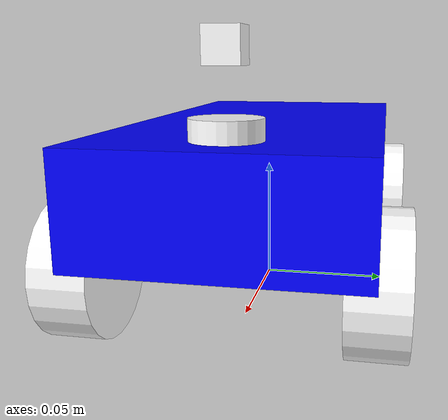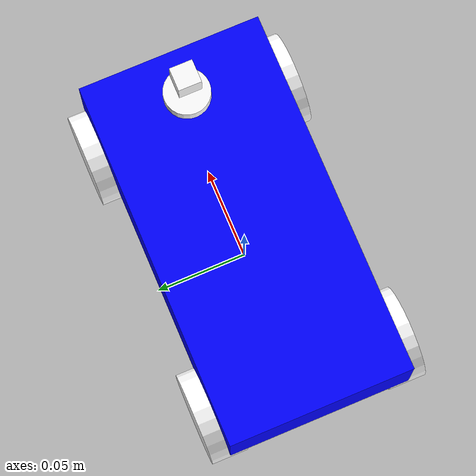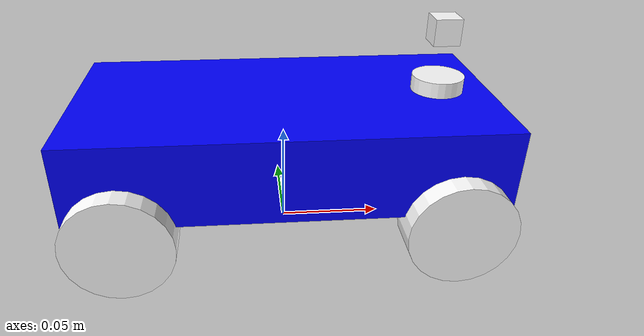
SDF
<?xml version="1.0"?>

<sdf version="1.9">

    <!-- nomeer_robot model -->
    <model name='nomeer_robot' canonical_link='base_link'>

        <static>false</static>
        <self_collide>false</self_collide>

        <!-- links-->
        <!-- base_footprint link -->
        <!--link
        name="base_footprint" /-->

        <!-- base_link -->
        <link name="base_link">0.0 <pose relative_to='__model__'>0 0 0.05 0 0 0</pose>

            <inertial>
                <mass>3.0</mass>
                <inertia>
                    <ixx>0.0054</ixx>
                    <ixy>0</ixy>
                    <ixz>0</ixz>
                    <iyy>0.0252</iyy>
                    <iyz>0</iyz>
                    <izz>0.0252</izz>
                </inertia>
            </inertial>

            <visual
                name='visual'>
                <geometry>
                    <box>
                        <size>0.2 0.1 0.04</size>
                    </box>
                </geometry>
                <material> <!-- blue color -->
                    <ambient>0.0 0.0 1.0 1</ambient>
                    <diffuse>0.0 0.0 1.0 1</diffuse>
                    <specular>0.0 0.0 1.0 1</specular>
                </material>
            </visual>

            <collision
                name='collision'>
                <geometry>
                    <box>
                        <size>0.2 0.1 0.04</size>
                    </box>
                </geometry>
            </collision>

        </link>

        <!-- front_right_wheel_link-->
        <link name="front_right_wheel_link">

            <pose relative_to="base_link">0.075 -0.05 -0.025 1.5707 0 0</pose>

            <inertial>
                <mass>0.05</mass>
                <inertia>
                    <ixx>0.00003331</ixx>
                    <ixy>0</ixy>
                    <ixz>0</ixz>
                    <iyy>0.0000204</iyy>
                    <iyz>0</iyz>
                    <izz>0.0000204</izz>
                </inertia>
            </inertial>

            <visual name='visual'>
                <geometry>
                    <cylinder>
                        <radius>0.025</radius>
                        <length>0.02</length>
                    </cylinder>
                </geometry>
                <material> <!-- white color -->
                    <ambient>1.0 1.0 1.0 1.0</ambient>
                    <diffuse>1.0 1.0 1.0 1.0</diffuse>
                    <specular>1.0 1.0 1.0 1.0</specular>
                </material>
            </visual>

            <collision name='collision'>
                <geometry>
                    <cylinder>
                        <radius>0.025</radius>
                        <length>0.02</length>
                    </cylinder>
                </geometry>
            </collision>

        </link>

        <!-- front_left_wheel_link-->
        <link name="front_left_wheel_link">

            <pose relative_to="base_link">0.075 0.05 -0.025 1.5707 0 0</pose>

            <inertial>
                <mass>0.05</mass>
                <inertia>
                    <ixx>0.00003331</ixx>
                    <ixy>0</ixy>
                    <ixz>0</ixz>
                    <iyy>0.0000204</iyy>
                    <iyz>0</iyz>
                    <izz>0.0000204</izz>
                </inertia>
            </inertial>

            <visual name='visual'>
                <geometry>
                    <cylinder>
                        <radius>0.025</radius>
                        <length>0.02</length>
                    </cylinder>
                </geometry>
                <material> <!-- white color -->
                    <ambient>1.0 1.0 1.0 1.0</ambient>
                    <diffuse>1.0 1.0 1.0 1.0</diffuse>
                    <specular>1.0 1.0 1.0 1.0</specular>
                </material>
            </visual>

            <collision name='collision'>
                <geometry>
                    <cylinder>
                        <radius>0.025</radius>
                        <length>0.01</length>
                    </cylinder>
                </geometry>
            </collision>

        </link>

        <!-- steering_front_right_link -->
        <link name="steering_front_right_link">

            <pose relative_to="base_link">0.075 -0.05 -0.025 1.5707 0 0</pose>

            <inertial>
                <mass>0.005</mass>
                <inertia>
                    <ixx>0.0000018</ixx>
                    <iyy>0.0000018</iyy>
                    <izz>0.0000018</izz>
                </inertia>
            </inertial>

        </link>

        <!-- steering_front_left_link -->
        <link name="steering_front_left_link">

            <pose relative_to="base_link">0.075 0.05 -0.025 1.5707 0 0</pose>

            <inertial>
                <mass>0.005</mass>
                <inertia>
                    <ixx>0.0000018</ixx>
                    <iyy>0.0000018</iyy>
                    <izz>0.0000018</izz>
                </inertia>
            </inertial>

        </link>

        <!-- rear_right_wheel_link-->
        <link name="rear_right_wheel_link">

            <pose relative_to="base_link">-0.075 0.05 -0.025 1.5707 0 0</pose>

            <inertial>
                <mass>0.05</mass>
                <inertia>
                    <ixx>0.00003331</ixx>
                    <ixy>0</ixy>
                    <ixz>0</ixz>
                    <iyy>0.0000204</iyy>
                    <iyz>0</iyz>
                    <izz>0.0000204</izz>
                </inertia>
            </inertial>

            <visual name='visual'>
                <geometry>
                    <cylinder>
                        <radius>0.025</radius>
                        <length>0.02</length>
                    </cylinder>
                </geometry>
                <material> <!-- white color -->
                    <ambient>1.0 1.0 1.0 1.0</ambient>
                    <diffuse>1.0 1.0 1.0 1.0</diffuse>
                    <specular>1.0 1.0 1.0 1.0</specular>
                </material>
            </visual>

            <collision name='collision'>
                <geometry>
                    <cylinder>
                        <radius>0.025</radius>
                        <length>0.02</length>
                    </cylinder>
                </geometry>
            </collision>

        </link>

        <!-- rear_left_wheel_link-->
        <link name="rear_left_wheel_link">

            <pose relative_to="base_link">-0.075 -0.05 -0.025 1.5707 0 0</pose>

            <inertial>
                <mass>0.05</mass>
                <inertia>
                    <ixx>0.00003331</ixx>
                    <ixy>0</ixy>
                    <ixz>0</ixz>
                    <iyy>0.0000204</iyy>
                    <iyz>0</iyz>
                    <izz>0.0000204</izz>
                </inertia>
            </inertial>

            <visual name='visual'>
                <geometry>
                    <cylinder>
                        <radius>0.025</radius>
                        <length>0.02</length>
                    </cylinder>
                </geometry>
                <material> <!-- white color -->
                    <ambient>1.0 1.0 1.0 1.0</ambient>
                    <diffuse>1.0 1.0 1.0 1.0</diffuse>
                    <specular>1.0 1.0 1.0 1.0</specular>
                </material>
            </visual>

            <collision name='collision'>
                <geometry>
                    <cylinder>
                        <radius>0.025</radius>
                        <length>0.02</length>
                    </cylinder>
                </geometry>
            </collision>

        </link>

        <!-- camera_link-->
        <link name="camera_link">

            <pose relative_to="base_link">0.075 0 0.05 0 0 0</pose>

            <visual name='visual'>
                <geometry>
                    <box>
                        <size>0.0125 0.0125 0.0125</size>
                    </box>
                </geometry>
                <material> <!-- white color -->
                    <ambient>1.0 1.0 1.0 1.0</ambient>
                    <diffuse>1.0 1.0 1.0 1.0</diffuse>
                    <specular>1.0 1.0 1.0 1.0</specular>
                </material>
            </visual>

            <collision name='collision'>
                <geometry>
                    <box>
                        <size>0.0125 0.0125 0.0125</size>
                    </box>
                </geometry>
            </collision>

            <sensor name="camera" type="camera">
                <pose relative_to='camera_link'>0 0 0 0 0 0</pose>
                <camera>
                    <horizontal_fov>1.047</horizontal_fov>
                    <image>
                        <width>320</width>
                        <height>240</height>
                    </image>
                    <clip>
                        <near>0.1</near>
                        <far>100</far>
                    </clip>
                </camera>
                <always_on>1</always_on>
                <update_rate>10</update_rate>
                <visualize>true</visualize>
            </sensor>

        </link>

        <!-- lidar_link-->
        <link name="lidar_link">

            <pose relative_to="base_link">0.075 0 0.02125 0 0 0</pose>

            <visual name='visual'>
                <geometry>
                    <cylinder>
                        <radius>0.0125</radius>
                        <length>0.0125</length>
                    </cylinder>
                </geometry>
                <material> <!-- white color -->
                    <ambient>1.0 1.0 1.0 1.0</ambient>
                    <diffuse>1.0 1.0 1.0 1.0</diffuse>
                    <specular>1.0 1.0 1.0 1.0</specular>
                </material>
            </visual>

            <collision name='collision'>
                <geometry>
                    <cylinder>
                        <radius>0.0125</radius>
                        <length>0.0125</length>
                    </cylinder>
                </geometry>
            </collision>

            <sensor name="lidar" type="gpu_lidar">
                <lidar>
                    <scan>
                        <horizontal>
                            <samples>400</samples>
                            <resolution>1</resolution>
                            <min_angle>-1.5707</min_angle>
                            <max_angle>1.5707</max_angle>
                        </horizontal>
                    </scan>
                    <range>
                        <min>0.15</min>
                        <max>25</max>
                        <resolution>0.01</resolution>
                    </range>
                </lidar>
                <gz_frame_id>lidar_link</gz_frame_id>
                <alwaysOn>1</alwaysOn>
                <visualize>true</visualize>
                <update_rate>10</update_rate>
            </sensor>

        </link>

        <!-- joins -->
        <!-- front_right_wheel_joint -->
        <joint name='front_right_wheel_joint' type='revolute'>
            <pose relative_to='front_right_wheel_link' />
            <parent>base_link</parent>
            <child>front_right_wheel_link</child>
            <axis>
                <xyz>0 1 0</xyz>
                <limit>
                    <lower>-inf</lower>
                    <upper>inf</upper>
                </limit>
                <dynamics>
                    <spring_reference>0</spring_reference>
                    <spring_stiffness>0</spring_stiffness>
                </dynamics>
            </axis>
        </joint>

        <!-- front_left_wheel_joint -->
        <joint name='front_left_wheel_joint' type='revolute'>
            <pose relative_to='front_left_wheel_link' />
            <parent>base_link</parent>
            <child>front_left_wheel_link</child>
            <axis>
                <xyz>0 1 0</xyz>
                <limit>
                    <lower>-inf</lower>
                    <upper>inf</upper>
                </limit>
                <dynamics>
                    <spring_reference>0</spring_reference>
                    <spring_stiffness>0</spring_stiffness>
                </dynamics>
            </axis>
        </joint>

        <!-- steering_front_right_joint -->
        <joint name="steering_front_right_joint" type="revolute">
            <pose relative_to="steering_front_right_link" />
            <parent>base_link</parent>
            <child>steering_front_right_link</child>
            <axis>
                <xyz>0 0 1</xyz>
                <limit>
                    <lower>-0.6</lower>
                    <upper>0.6</upper>
                    <velocity>1.0</velocity>
                    <effort>25</effort>
                </limit>
                <dynamics>
                    <spring_reference>0</spring_reference>
                    <spring_stiffness>0</spring_stiffness>
                </dynamics>
            </axis>
        </joint>

        <!-- steering_front_left_joint -->
        <joint name="steering_front_left_joint" type="revolute">
            <pose relative_to="steering_front_left_link" />
            <parent>base_link</parent>
            <child>steering_front_left_link</child>
            <axis>
                <xyz>0 0 1</xyz>
                <limit>
                    <lower>-0.6</lower>
                    <upper>0.6</upper>
                    <velocity>1.0</velocity>
                    <effort>25</effort>
                </limit>
                <dynamics>
                    <spring_reference>0</spring_reference>
                    <spring_stiffness>0</spring_stiffness>
                </dynamics>
            </axis>
        </joint>

        <!-- rear_right_wheel_joint -->
        <joint name='rear_right_wheel_joint' type='revolute'>
            <pose relative_to='rear_right_wheel_link' />
            <parent>base_link</parent>
            <child>rear_right_wheel_link</child>
            <axis>
                <xyz>0 1 0</xyz>
                <limit>
                    <lower>-inf</lower>
                    <upper>inf</upper>
                </limit>
                <dynamics>
                    <spring_reference>0</spring_reference>
                    <spring_stiffness>0</spring_stiffness>
                </dynamics>
            </axis>
        </joint>

        <!-- rear_left_wheel_joint -->
        <joint name='rear_left_wheel_joint' type='revolute'>
            <pose relative_to='rear_left_wheel_link' />
            <parent>base_link</parent>
            <child>rear_left_wheel_link</child>
            <axis>
                <xyz>0 1 0</xyz>
                <limit>
                    <lower>-inf</lower>
                    <upper>inf</upper>
                </limit>
                <dynamics>
                    <spring_reference>0</spring_reference>
                    <spring_stiffness>0</spring_stiffness>
                </dynamics>
            </axis>
        </joint>

        <!-- camera_joint -->
        <joint name="camera_joint" type="fixed">
            <pose relative_to='camera_link' />
            <parent>base_link</parent>
            <child>camera_link</child>
        </joint>

        <!-- lidar_joint -->
        <joint name="lidar_joint" type="fixed">
            <pose relative_to='lidar_link' />
            <parent>base_link</parent>
            <child>lidar_link</child>
        </joint>

        <!-- plugins -->
        <!-- joint_controller plugin-->

        <!-- ackermann plugin -->
        <plugin
            filename="gz-sim-ackermann-steering-system"
            name="gz::sim::systems::AckermannSteering">
            <left_joint>rear_left_wheel_joint</left_joint>
            <left_joint>front_left_wheel_joint</left_joint>
            <right_joint>rear_right_wheel_joint</right_joint>
            <right_joint>front_right_wheel_joint</right_joint>
            <left_steering_joint>steering_front_left_joint</left_steering_joint>
            <right_steering_joint>steering_front_right_joint</right_steering_joint>
            <kingpin_width>0.13</kingpin_width>
            <steering_limit>0.4</steering_limit>
            <wheel_base>0.23521</wheel_base>
            <wheel_separation>0.164</wheel_separation>
            <wheel_radius>0.0345</wheel_radius>
            <min_velocity>-10.0</min_velocity>
            <max_velocity>10.0</max_velocity>
            <min_acceleration>-10</min_acceleration>
            <max_acceleration>10</max_acceleration>
            <topic>/cmd_vel</topic>
        </plugin>

        <!-- joint_state_publisher plugin -->
        <plugin
            filename="gz-sim-joint-state-publisher-system"
            name="gz::sim::systems::JointStatePublisher">
            <joint_name>front_left_wheel_joint</joint_name>
            <joint_name>rear_left_wheel_joint</joint_name>
            <joint_name>rear_right_wheel_joint</joint_name>
            <joint_name>front_right_wheel_joint</joint_name>
            <joint_name>steering_front_left_joint</joint_name>
            <joint_name>steering_front_right_joint</joint_name>
        </plugin>

    </model>

</sdf>
